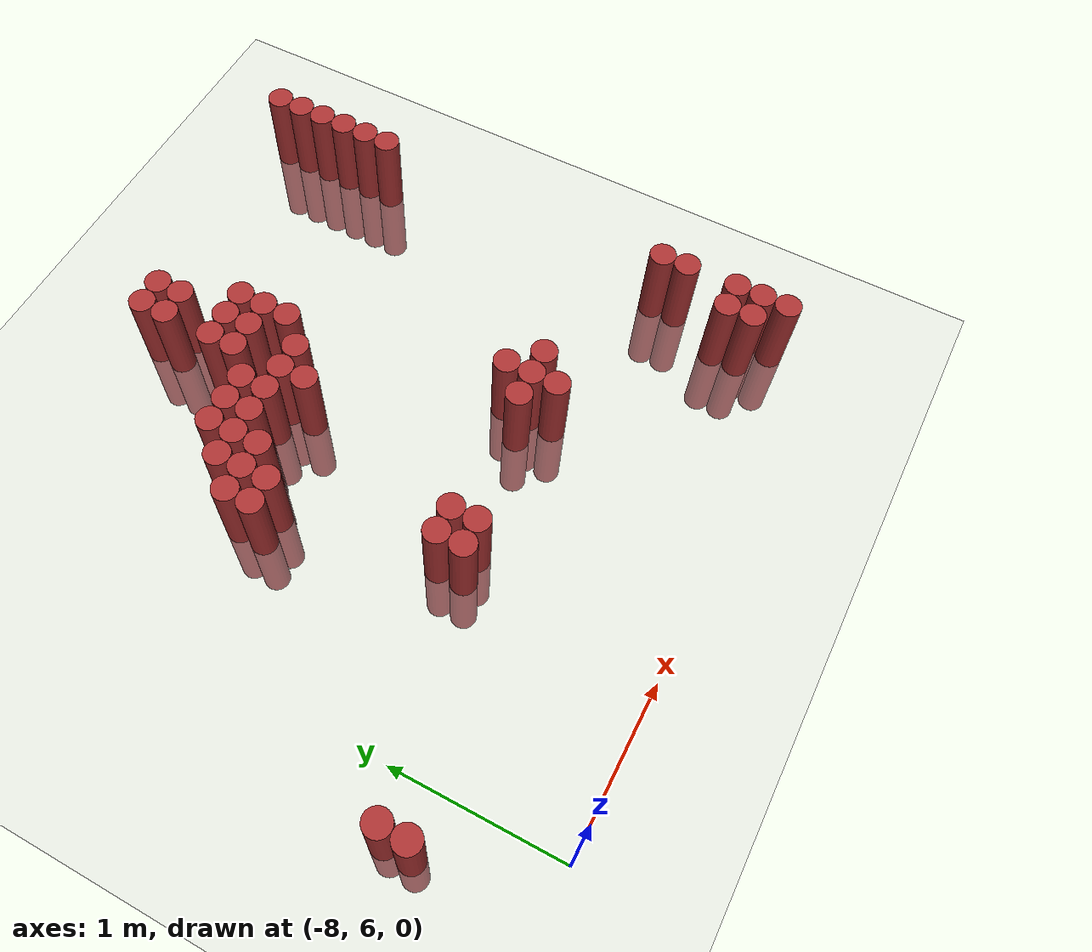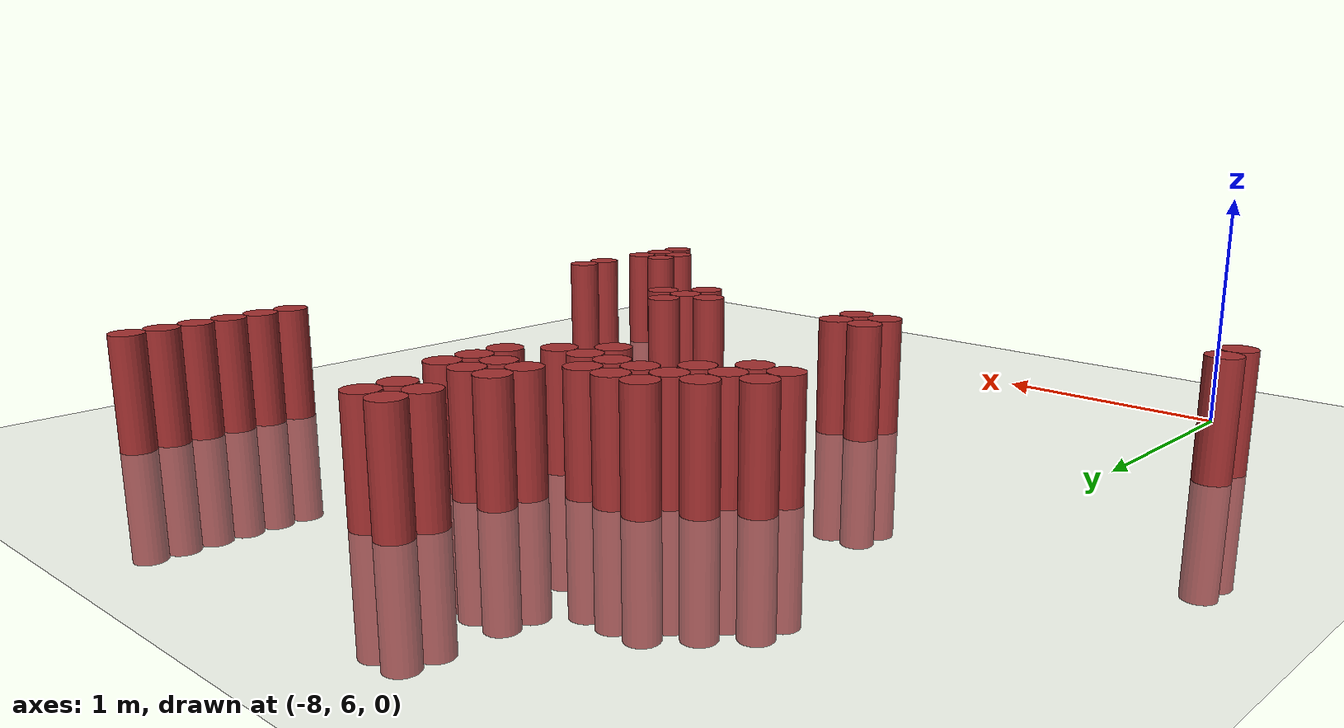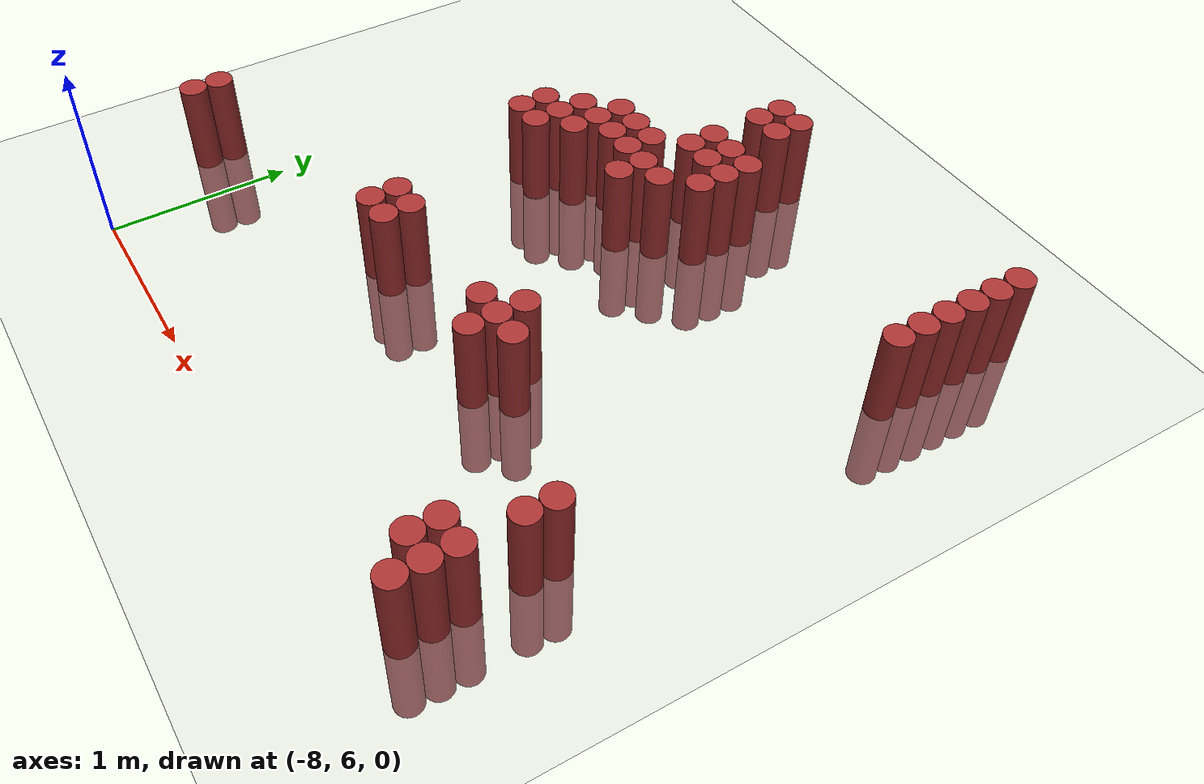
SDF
<sdf version="1.6">
 <world name="default">
  <model name="ground_plane">
   <static>1</static>
   <link name="link">
    <collision name="collision">
     <geometry><plane><normal>0 0 1</normal><size>100 100</size></plane></geometry>
     <surface><friction><ode><mu>100</mu><mu2>50</mu2></ode></friction></surface>
    </collision>
    <visual name="visual">
     <cast_shadows>0</cast_shadows>
     <geometry><plane><normal>0 0 1</normal><size>100 100</size></plane></geometry>
     <material>
      <script><uri>file://media/materials/scripts/gazebo.material</uri><name>Gazebo/Grey</name></script>
     </material>
    </visual>
   </link>
  </model>
  <model name="unit_cylinder_186">
   <static>1</static>
   <pose>-8.325000 6.675000 0.000000 0.000000 0.000000 0.000000</pose>
   <link name="link">
    <inertial>
     <mass>1</mass>
     <inertia><ixx>0.145833</ixx><ixy>0</ixy><ixz>0</ixz><iyy>0.145833</iyy><iyz>0</iyz><izz>0.125</izz></inertia>
    </inertial>
    <collision name="collision">
     <geometry><cylinder><radius>0.075000</radius><length>1</length></cylinder></geometry>
    </collision>
    <visual name="visual">
     <geometry><cylinder><radius>0.075000</radius><length>1</length></cylinder></geometry>
     <material>
      <ambient>0.648000 0.192000 0.192000 1</ambient>
      <diffuse>0.648000 0.192000 0.192000 1</diffuse>
     </material>
     <material>
      <script><name>Gazebo/Grey</name><uri>file://media/materials/scripts/gazebo.material</uri></script>
     </material>
    </visual>
   </link>
  </model>
  <model name="unit_cylinder_187">
   <static>1</static>
   <pose>-8.325000 6.825000 0.000000 0.000000 0.000000 0.000000</pose>
   <link name="link">
    <inertial>
     <mass>1</mass>
     <inertia><ixx>0.145833</ixx><ixy>0</ixy><ixz>0</ixz><iyy>0.145833</iyy><iyz>0</iyz><izz>0.125</izz></inertia>
    </inertial>
    <collision name="collision">
     <geometry><cylinder><radius>0.075000</radius><length>1</length></cylinder></geometry>
    </collision>
    <visual name="visual">
     <geometry><cylinder><radius>0.075000</radius><length>1</length></cylinder></geometry>
     <material>
      <ambient>0.648000 0.192000 0.192000 1</ambient>
      <diffuse>0.648000 0.192000 0.192000 1</diffuse>
     </material>
     <material>
      <script><name>Gazebo/Grey</name><uri>file://media/materials/scripts/gazebo.material</uri></script>
     </material>
    </visual>
   </link>
  </model>
  <model name="unit_cylinder_202">
   <static>1</static>
   <pose>-7.275000 8.175000 0.000000 0.000000 0.000000 0.000000</pose>
   <link name="link">
    <inertial>
     <mass>1</mass>
     <inertia><ixx>0.145833</ixx><ixy>0</ixy><ixz>0</ixz><iyy>0.145833</iyy><iyz>0</iyz><izz>0.125</izz></inertia>
    </inertial>
    <collision name="collision">
     <geometry><cylinder><radius>0.075000</radius><length>1</length></cylinder></geometry>
    </collision>
    <visual name="visual">
     <geometry><cylinder><radius>0.075000</radius><length>1</length></cylinder></geometry>
     <material>
      <ambient>0.648000 0.192000 0.192000 1</ambient>
      <diffuse>0.648000 0.192000 0.192000 1</diffuse>
     </material>
     <material>
      <script><name>Gazebo/Grey</name><uri>file://media/materials/scripts/gazebo.material</uri></script>
     </material>
    </visual>
   </link>
  </model>
  <model name="unit_cylinder_203">
   <static>1</static>
   <pose>-7.275000 8.325000 0.000000 0.000000 0.000000 0.000000</pose>
   <link name="link">
    <inertial>
     <mass>1</mass>
     <inertia><ixx>0.145833</ixx><ixy>0</ixy><ixz>0</ixz><iyy>0.145833</iyy><iyz>0</iyz><izz>0.125</izz></inertia>
    </inertial>
    <collision name="collision">
     <geometry><cylinder><radius>0.075000</radius><length>1</length></cylinder></geometry>
    </collision>
    <visual name="visual">
     <geometry><cylinder><radius>0.075000</radius><length>1</length></cylinder></geometry>
     <material>
      <ambient>0.648000 0.192000 0.192000 1</ambient>
      <diffuse>0.648000 0.192000 0.192000 1</diffuse>
     </material>
     <material>
      <script><name>Gazebo/Grey</name><uri>file://media/materials/scripts/gazebo.material</uri></script>
     </material>
    </visual>
   </link>
  </model>
  <model name="unit_cylinder_206">
   <static>1</static>
   <pose>-7.125000 8.175000 0.000000 0.000000 0.000000 0.000000</pose>
   <link name="link">
    <inertial>
     <mass>1</mass>
     <inertia><ixx>0.145833</ixx><ixy>0</ixy><ixz>0</ixz><iyy>0.145833</iyy><iyz>0</iyz><izz>0.125</izz></inertia>
    </inertial>
    <collision name="collision">
     <geometry><cylinder><radius>0.075000</radius><length>1</length></cylinder></geometry>
    </collision>
    <visual name="visual">
     <geometry><cylinder><radius>0.075000</radius><length>1</length></cylinder></geometry>
     <material>
      <ambient>0.648000 0.192000 0.192000 1</ambient>
      <diffuse>0.648000 0.192000 0.192000 1</diffuse>
     </material>
     <material>
      <script><name>Gazebo/Grey</name><uri>file://media/materials/scripts/gazebo.material</uri></script>
     </material>
    </visual>
   </link>
  </model>
  <model name="unit_cylinder_207">
   <static>1</static>
   <pose>-7.125000 8.325000 0.000000 0.000000 0.000000 0.000000</pose>
   <link name="link">
    <inertial>
     <mass>1</mass>
     <inertia><ixx>0.145833</ixx><ixy>0</ixy><ixz>0</ixz><iyy>0.145833</iyy><iyz>0</iyz><izz>0.125</izz></inertia>
    </inertial>
    <collision name="collision">
     <geometry><cylinder><radius>0.075000</radius><length>1</length></cylinder></geometry>
    </collision>
    <visual name="visual">
     <geometry><cylinder><radius>0.075000</radius><length>1</length></cylinder></geometry>
     <material>
      <ambient>0.648000 0.192000 0.192000 1</ambient>
      <diffuse>0.648000 0.192000 0.192000 1</diffuse>
     </material>
     <material>
      <script><name>Gazebo/Grey</name><uri>file://media/materials/scripts/gazebo.material</uri></script>
     </material>
    </visual>
   </link>
  </model>
  <model name="unit_cylinder_208">
   <static>1</static>
   <pose>-7.125000 8.475000 0.000000 0.000000 0.000000 0.000000</pose>
   <link name="link">
    <inertial>
     <mass>1</mass>
     <inertia><ixx>0.145833</ixx><ixy>0</ixy><ixz>0</ixz><iyy>0.145833</iyy><iyz>0</iyz><izz>0.125</izz></inertia>
    </inertial>
    <collision name="collision">
     <geometry><cylinder><radius>0.075000</radius><length>1</length></cylinder></geometry>
    </collision>
    <visual name="visual">
     <geometry><cylinder><radius>0.075000</radius><length>1</length></cylinder></geometry>
     <material>
      <ambient>0.648000 0.192000 0.192000 1</ambient>
      <diffuse>0.648000 0.192000 0.192000 1</diffuse>
     </material>
     <material>
      <script><name>Gazebo/Grey</name><uri>file://media/materials/scripts/gazebo.material</uri></script>
     </material>
    </visual>
   </link>
  </model>
  <model name="unit_cylinder_211">
   <static>1</static>
   <pose>-6.975000 7.125000 0.000000 0.000000 0.000000 0.000000</pose>
   <link name="link">
    <inertial>
     <mass>1</mass>
     <inertia><ixx>0.145833</ixx><ixy>0</ixy><ixz>0</ixz><iyy>0.145833</iyy><iyz>0</iyz><izz>0.125</izz></inertia>
    </inertial>
    <collision name="collision">
     <geometry><cylinder><radius>0.075000</radius><length>1</length></cylinder></geometry>
    </collision>
    <visual name="visual">
     <geometry><cylinder><radius>0.075000</radius><length>1</length></cylinder></geometry>
     <material>
      <ambient>0.648000 0.192000 0.192000 1</ambient>
      <diffuse>0.648000 0.192000 0.192000 1</diffuse>
     </material>
     <material>
      <script><name>Gazebo/Grey</name><uri>file://media/materials/scripts/gazebo.material</uri></script>
     </material>
    </visual>
   </link>
  </model>
  <model name="unit_cylinder_212">
   <static>1</static>
   <pose>-6.975000 7.275000 0.000000 0.000000 0.000000 0.000000</pose>
   <link name="link">
    <inertial>
     <mass>1</mass>
     <inertia><ixx>0.145833</ixx><ixy>0</ixy><ixz>0</ixz><iyy>0.145833</iyy><iyz>0</iyz><izz>0.125</izz></inertia>
    </inertial>
    <collision name="collision">
     <geometry><cylinder><radius>0.075000</radius><length>1</length></cylinder></geometry>
    </collision>
    <visual name="visual">
     <geometry><cylinder><radius>0.075000</radius><length>1</length></cylinder></geometry>
     <material>
      <ambient>0.648000 0.192000 0.192000 1</ambient>
      <diffuse>0.648000 0.192000 0.192000 1</diffuse>
     </material>
     <material>
      <script><name>Gazebo/Grey</name><uri>file://media/materials/scripts/gazebo.material</uri></script>
     </material>
    </visual>
   </link>
  </model>
  <model name="unit_cylinder_213">
   <static>1</static>
   <pose>-6.975000 8.325000 0.000000 0.000000 0.000000 0.000000</pose>
   <link name="link">
    <inertial>
     <mass>1</mass>
     <inertia><ixx>0.145833</ixx><ixy>0</ixy><ixz>0</ixz><iyy>0.145833</iyy><iyz>0</iyz><izz>0.125</izz></inertia>
    </inertial>
    <collision name="collision">
     <geometry><cylinder><radius>0.075000</radius><length>1</length></cylinder></geometry>
    </collision>
    <visual name="visual">
     <geometry><cylinder><radius>0.075000</radius><length>1</length></cylinder></geometry>
     <material>
      <ambient>0.648000 0.192000 0.192000 1</ambient>
      <diffuse>0.648000 0.192000 0.192000 1</diffuse>
     </material>
     <material>
      <script><name>Gazebo/Grey</name><uri>file://media/materials/scripts/gazebo.material</uri></script>
     </material>
    </visual>
   </link>
  </model>
  <model name="unit_cylinder_214">
   <static>1</static>
   <pose>-6.975000 8.475000 0.000000 0.000000 0.000000 0.000000</pose>
   <link name="link">
    <inertial>
     <mass>1</mass>
     <inertia><ixx>0.145833</ixx><ixy>0</ixy><ixz>0</ixz><iyy>0.145833</iyy><iyz>0</iyz><izz>0.125</izz></inertia>
    </inertial>
    <collision name="collision">
     <geometry><cylinder><radius>0.075000</radius><length>1</length></cylinder></geometry>
    </collision>
    <visual name="visual">
     <geometry><cylinder><radius>0.075000</radius><length>1</length></cylinder></geometry>
     <material>
      <ambient>0.648000 0.192000 0.192000 1</ambient>
      <diffuse>0.648000 0.192000 0.192000 1</diffuse>
     </material>
     <material>
      <script><name>Gazebo/Grey</name><uri>file://media/materials/scripts/gazebo.material</uri></script>
     </material>
    </visual>
   </link>
  </model>
  <model name="unit_cylinder_215">
   <static>1</static>
   <pose>-6.975000 8.625000 0.000000 0.000000 0.000000 0.000000</pose>
   <link name="link">
    <inertial>
     <mass>1</mass>
     <inertia><ixx>0.145833</ixx><ixy>0</ixy><ixz>0</ixz><iyy>0.145833</iyy><iyz>0</iyz><izz>0.125</izz></inertia>
    </inertial>
    <collision name="collision">
     <geometry><cylinder><radius>0.075000</radius><length>1</length></cylinder></geometry>
    </collision>
    <visual name="visual">
     <geometry><cylinder><radius>0.075000</radius><length>1</length></cylinder></geometry>
     <material>
      <ambient>0.648000 0.192000 0.192000 1</ambient>
      <diffuse>0.648000 0.192000 0.192000 1</diffuse>
     </material>
     <material>
      <script><name>Gazebo/Grey</name><uri>file://media/materials/scripts/gazebo.material</uri></script>
     </material>
    </visual>
   </link>
  </model>
  <model name="unit_cylinder_218">
   <static>1</static>
   <pose>-6.825000 7.125000 0.000000 0.000000 0.000000 0.000000</pose>
   <link name="link">
    <inertial>
     <mass>1</mass>
     <inertia><ixx>0.145833</ixx><ixy>0</ixy><ixz>0</ixz><iyy>0.145833</iyy><iyz>0</iyz><izz>0.125</izz></inertia>
    </inertial>
    <collision name="collision">
     <geometry><cylinder><radius>0.075000</radius><length>1</length></cylinder></geometry>
    </collision>
    <visual name="visual">
     <geometry><cylinder><radius>0.075000</radius><length>1</length></cylinder></geometry>
     <material>
      <ambient>0.648000 0.192000 0.192000 1</ambient>
      <diffuse>0.648000 0.192000 0.192000 1</diffuse>
     </material>
     <material>
      <script><name>Gazebo/Grey</name><uri>file://media/materials/scripts/gazebo.material</uri></script>
     </material>
    </visual>
   </link>
  </model>
  <model name="unit_cylinder_219">
   <static>1</static>
   <pose>-6.825000 7.275000 0.000000 0.000000 0.000000 0.000000</pose>
   <link name="link">
    <inertial>
     <mass>1</mass>
     <inertia><ixx>0.145833</ixx><ixy>0</ixy><ixz>0</ixz><iyy>0.145833</iyy><iyz>0</iyz><izz>0.125</izz></inertia>
    </inertial>
    <collision name="collision">
     <geometry><cylinder><radius>0.075000</radius><length>1</length></cylinder></geometry>
    </collision>
    <visual name="visual">
     <geometry><cylinder><radius>0.075000</radius><length>1</length></cylinder></geometry>
     <material>
      <ambient>0.648000 0.192000 0.192000 1</ambient>
      <diffuse>0.648000 0.192000 0.192000 1</diffuse>
     </material>
     <material>
      <script><name>Gazebo/Grey</name><uri>file://media/materials/scripts/gazebo.material</uri></script>
     </material>
    </visual>
   </link>
  </model>
  <model name="unit_cylinder_220">
   <static>1</static>
   <pose>-6.825000 8.475000 0.000000 0.000000 0.000000 0.000000</pose>
   <link name="link">
    <inertial>
     <mass>1</mass>
     <inertia><ixx>0.145833</ixx><ixy>0</ixy><ixz>0</ixz><iyy>0.145833</iyy><iyz>0</iyz><izz>0.125</izz></inertia>
    </inertial>
    <collision name="collision">
     <geometry><cylinder><radius>0.075000</radius><length>1</length></cylinder></geometry>
    </collision>
    <visual name="visual">
     <geometry><cylinder><radius>0.075000</radius><length>1</length></cylinder></geometry>
     <material>
      <ambient>0.648000 0.192000 0.192000 1</ambient>
      <diffuse>0.648000 0.192000 0.192000 1</diffuse>
     </material>
     <material>
      <script><name>Gazebo/Grey</name><uri>file://media/materials/scripts/gazebo.material</uri></script>
     </material>
    </visual>
   </link>
  </model>
  <model name="unit_cylinder_221">
   <static>1</static>
   <pose>-6.825000 8.625000 0.000000 0.000000 0.000000 0.000000</pose>
   <link name="link">
    <inertial>
     <mass>1</mass>
     <inertia><ixx>0.145833</ixx><ixy>0</ixy><ixz>0</ixz><iyy>0.145833</iyy><iyz>0</iyz><izz>0.125</izz></inertia>
    </inertial>
    <collision name="collision">
     <geometry><cylinder><radius>0.075000</radius><length>1</length></cylinder></geometry>
    </collision>
    <visual name="visual">
     <geometry><cylinder><radius>0.075000</radius><length>1</length></cylinder></geometry>
     <material>
      <ambient>0.648000 0.192000 0.192000 1</ambient>
      <diffuse>0.648000 0.192000 0.192000 1</diffuse>
     </material>
     <material>
      <script><name>Gazebo/Grey</name><uri>file://media/materials/scripts/gazebo.material</uri></script>
     </material>
    </visual>
   </link>
  </model>
  <model name="unit_cylinder_224">
   <static>1</static>
   <pose>-6.675000 8.475000 0.000000 0.000000 0.000000 0.000000</pose>
   <link name="link">
    <inertial>
     <mass>1</mass>
     <inertia><ixx>0.145833</ixx><ixy>0</ixy><ixz>0</ixz><iyy>0.145833</iyy><iyz>0</iyz><izz>0.125</izz></inertia>
    </inertial>
    <collision name="collision">
     <geometry><cylinder><radius>0.075000</radius><length>1</length></cylinder></geometry>
    </collision>
    <visual name="visual">
     <geometry><cylinder><radius>0.075000</radius><length>1</length></cylinder></geometry>
     <material>
      <ambient>0.648000 0.192000 0.192000 1</ambient>
      <diffuse>0.648000 0.192000 0.192000 1</diffuse>
     </material>
     <material>
      <script><name>Gazebo/Grey</name><uri>file://media/materials/scripts/gazebo.material</uri></script>
     </material>
    </visual>
   </link>
  </model>
  <model name="unit_cylinder_225">
   <static>1</static>
   <pose>-6.675000 8.625000 0.000000 0.000000 0.000000 0.000000</pose>
   <link name="link">
    <inertial>
     <mass>1</mass>
     <inertia><ixx>0.145833</ixx><ixy>0</ixy><ixz>0</ixz><iyy>0.145833</iyy><iyz>0</iyz><izz>0.125</izz></inertia>
    </inertial>
    <collision name="collision">
     <geometry><cylinder><radius>0.075000</radius><length>1</length></cylinder></geometry>
    </collision>
    <visual name="visual">
     <geometry><cylinder><radius>0.075000</radius><length>1</length></cylinder></geometry>
     <material>
      <ambient>0.648000 0.192000 0.192000 1</ambient>
      <diffuse>0.648000 0.192000 0.192000 1</diffuse>
     </material>
     <material>
      <script><name>Gazebo/Grey</name><uri>file://media/materials/scripts/gazebo.material</uri></script>
     </material>
    </visual>
   </link>
  </model>
  <model name="unit_cylinder_228">
   <static>1</static>
   <pose>-6.525000 8.325000 0.000000 0.000000 0.000000 0.000000</pose>
   <link name="link">
    <inertial>
     <mass>1</mass>
     <inertia><ixx>0.145833</ixx><ixy>0</ixy><ixz>0</ixz><iyy>0.145833</iyy><iyz>0</iyz><izz>0.125</izz></inertia>
    </inertial>
    <collision name="collision">
     <geometry><cylinder><radius>0.075000</radius><length>1</length></cylinder></geometry>
    </collision>
    <visual name="visual">
     <geometry><cylinder><radius>0.075000</radius><length>1</length></cylinder></geometry>
     <material>
      <ambient>0.648000 0.192000 0.192000 1</ambient>
      <diffuse>0.648000 0.192000 0.192000 1</diffuse>
     </material>
     <material>
      <script><name>Gazebo/Grey</name><uri>file://media/materials/scripts/gazebo.material</uri></script>
     </material>
    </visual>
   </link>
  </model>
  <model name="unit_cylinder_229">
   <static>1</static>
   <pose>-6.525000 8.475000 0.000000 0.000000 0.000000 0.000000</pose>
   <link name="link">
    <inertial>
     <mass>1</mass>
     <inertia><ixx>0.145833</ixx><ixy>0</ixy><ixz>0</ixz><iyy>0.145833</iyy><iyz>0</iyz><izz>0.125</izz></inertia>
    </inertial>
    <collision name="collision">
     <geometry><cylinder><radius>0.075000</radius><length>1</length></cylinder></geometry>
    </collision>
    <visual name="visual">
     <geometry><cylinder><radius>0.075000</radius><length>1</length></cylinder></geometry>
     <material>
      <ambient>0.648000 0.192000 0.192000 1</ambient>
      <diffuse>0.648000 0.192000 0.192000 1</diffuse>
     </material>
     <material>
      <script><name>Gazebo/Grey</name><uri>file://media/materials/scripts/gazebo.material</uri></script>
     </material>
    </visual>
   </link>
  </model>
  <model name="unit_cylinder_230">
   <static>1</static>
   <pose>-6.525000 8.775000 0.000000 0.000000 0.000000 0.000000</pose>
   <link name="link">
    <inertial>
     <mass>1</mass>
     <inertia><ixx>0.145833</ixx><ixy>0</ixy><ixz>0</ixz><iyy>0.145833</iyy><iyz>0</iyz><izz>0.125</izz></inertia>
    </inertial>
    <collision name="collision">
     <geometry><cylinder><radius>0.075000</radius><length>1</length></cylinder></geometry>
    </collision>
    <visual name="visual">
     <geometry><cylinder><radius>0.075000</radius><length>1</length></cylinder></geometry>
     <material>
      <ambient>0.648000 0.192000 0.192000 1</ambient>
      <diffuse>0.648000 0.192000 0.192000 1</diffuse>
     </material>
     <material>
      <script><name>Gazebo/Grey</name><uri>file://media/materials/scripts/gazebo.material</uri></script>
     </material>
    </visual>
   </link>
  </model>
  <model name="unit_cylinder_231">
   <static>1</static>
   <pose>-6.525000 8.925000 0.000000 0.000000 0.000000 0.000000</pose>
   <link name="link">
    <inertial>
     <mass>1</mass>
     <inertia><ixx>0.145833</ixx><ixy>0</ixy><ixz>0</ixz><iyy>0.145833</iyy><iyz>0</iyz><izz>0.125</izz></inertia>
    </inertial>
    <collision name="collision">
     <geometry><cylinder><radius>0.075000</radius><length>1</length></cylinder></geometry>
    </collision>
    <visual name="visual">
     <geometry><cylinder><radius>0.075000</radius><length>1</length></cylinder></geometry>
     <material>
      <ambient>0.648000 0.192000 0.192000 1</ambient>
      <diffuse>0.648000 0.192000 0.192000 1</diffuse>
     </material>
     <material>
      <script><name>Gazebo/Grey</name><uri>file://media/materials/scripts/gazebo.material</uri></script>
     </material>
    </visual>
   </link>
  </model>
  <model name="unit_cylinder_232">
   <static>1</static>
   <pose>-6.525000 9.225000 0.000000 0.000000 0.000000 0.000000</pose>
   <link name="link">
    <inertial>
     <mass>1</mass>
     <inertia><ixx>0.145833</ixx><ixy>0</ixy><ixz>0</ixz><iyy>0.145833</iyy><iyz>0</iyz><izz>0.125</izz></inertia>
    </inertial>
    <collision name="collision">
     <geometry><cylinder><radius>0.075000</radius><length>1</length></cylinder></geometry>
    </collision>
    <visual name="visual">
     <geometry><cylinder><radius>0.075000</radius><length>1</length></cylinder></geometry>
     <material>
      <ambient>0.648000 0.192000 0.192000 1</ambient>
      <diffuse>0.648000 0.192000 0.192000 1</diffuse>
     </material>
     <material>
      <script><name>Gazebo/Grey</name><uri>file://media/materials/scripts/gazebo.material</uri></script>
     </material>
    </visual>
   </link>
  </model>
  <model name="unit_cylinder_233">
   <static>1</static>
   <pose>-6.525000 9.375000 0.000000 0.000000 0.000000 0.000000</pose>
   <link name="link">
    <inertial>
     <mass>1</mass>
     <inertia><ixx>0.145833</ixx><ixy>0</ixy><ixz>0</ixz><iyy>0.145833</iyy><iyz>0</iyz><izz>0.125</izz></inertia>
    </inertial>
    <collision name="collision">
     <geometry><cylinder><radius>0.075000</radius><length>1</length></cylinder></geometry>
    </collision>
    <visual name="visual">
     <geometry><cylinder><radius>0.075000</radius><length>1</length></cylinder></geometry>
     <material>
      <ambient>0.648000 0.192000 0.192000 1</ambient>
      <diffuse>0.648000 0.192000 0.192000 1</diffuse>
     </material>
     <material>
      <script><name>Gazebo/Grey</name><uri>file://media/materials/scripts/gazebo.material</uri></script>
     </material>
    </visual>
   </link>
  </model>
  <model name="unit_cylinder_239">
   <static>1</static>
   <pose>-6.375000 8.475000 0.000000 0.000000 0.000000 0.000000</pose>
   <link name="link">
    <inertial>
     <mass>1</mass>
     <inertia><ixx>0.145833</ixx><ixy>0</ixy><ixz>0</ixz><iyy>0.145833</iyy><iyz>0</iyz><izz>0.125</izz></inertia>
    </inertial>
    <collision name="collision">
     <geometry><cylinder><radius>0.075000</radius><length>1</length></cylinder></geometry>
    </collision>
    <visual name="visual">
     <geometry><cylinder><radius>0.075000</radius><length>1</length></cylinder></geometry>
     <material>
      <ambient>0.648000 0.192000 0.192000 1</ambient>
      <diffuse>0.648000 0.192000 0.192000 1</diffuse>
     </material>
     <material>
      <script><name>Gazebo/Grey</name><uri>file://media/materials/scripts/gazebo.material</uri></script>
     </material>
    </visual>
   </link>
  </model>
  <model name="unit_cylinder_240">
   <static>1</static>
   <pose>-6.375000 8.775000 0.000000 0.000000 0.000000 0.000000</pose>
   <link name="link">
    <inertial>
     <mass>1</mass>
     <inertia><ixx>0.145833</ixx><ixy>0</ixy><ixz>0</ixz><iyy>0.145833</iyy><iyz>0</iyz><izz>0.125</izz></inertia>
    </inertial>
    <collision name="collision">
     <geometry><cylinder><radius>0.075000</radius><length>1</length></cylinder></geometry>
    </collision>
    <visual name="visual">
     <geometry><cylinder><radius>0.075000</radius><length>1</length></cylinder></geometry>
     <material>
      <ambient>0.648000 0.192000 0.192000 1</ambient>
      <diffuse>0.648000 0.192000 0.192000 1</diffuse>
     </material>
     <material>
      <script><name>Gazebo/Grey</name><uri>file://media/materials/scripts/gazebo.material</uri></script>
     </material>
    </visual>
   </link>
  </model>
  <model name="unit_cylinder_241">
   <static>1</static>
   <pose>-6.375000 8.925000 0.000000 0.000000 0.000000 0.000000</pose>
   <link name="link">
    <inertial>
     <mass>1</mass>
     <inertia><ixx>0.145833</ixx><ixy>0</ixy><ixz>0</ixz><iyy>0.145833</iyy><iyz>0</iyz><izz>0.125</izz></inertia>
    </inertial>
    <collision name="collision">
     <geometry><cylinder><radius>0.075000</radius><length>1</length></cylinder></geometry>
    </collision>
    <visual name="visual">
     <geometry><cylinder><radius>0.075000</radius><length>1</length></cylinder></geometry>
     <material>
      <ambient>0.648000 0.192000 0.192000 1</ambient>
      <diffuse>0.648000 0.192000 0.192000 1</diffuse>
     </material>
     <material>
      <script><name>Gazebo/Grey</name><uri>file://media/materials/scripts/gazebo.material</uri></script>
     </material>
    </visual>
   </link>
  </model>
  <model name="unit_cylinder_242">
   <static>1</static>
   <pose>-6.375000 9.225000 0.000000 0.000000 0.000000 0.000000</pose>
   <link name="link">
    <inertial>
     <mass>1</mass>
     <inertia><ixx>0.145833</ixx><ixy>0</ixy><ixz>0</ixz><iyy>0.145833</iyy><iyz>0</iyz><izz>0.125</izz></inertia>
    </inertial>
    <collision name="collision">
     <geometry><cylinder><radius>0.075000</radius><length>1</length></cylinder></geometry>
    </collision>
    <visual name="visual">
     <geometry><cylinder><radius>0.075000</radius><length>1</length></cylinder></geometry>
     <material>
      <ambient>0.648000 0.192000 0.192000 1</ambient>
      <diffuse>0.648000 0.192000 0.192000 1</diffuse>
     </material>
     <material>
      <script><name>Gazebo/Grey</name><uri>file://media/materials/scripts/gazebo.material</uri></script>
     </material>
    </visual>
   </link>
  </model>
  <model name="unit_cylinder_243">
   <static>1</static>
   <pose>-6.375000 9.375000 0.000000 0.000000 0.000000 0.000000</pose>
   <link name="link">
    <inertial>
     <mass>1</mass>
     <inertia><ixx>0.145833</ixx><ixy>0</ixy><ixz>0</ixz><iyy>0.145833</iyy><iyz>0</iyz><izz>0.125</izz></inertia>
    </inertial>
    <collision name="collision">
     <geometry><cylinder><radius>0.075000</radius><length>1</length></cylinder></geometry>
    </collision>
    <visual name="visual">
     <geometry><cylinder><radius>0.075000</radius><length>1</length></cylinder></geometry>
     <material>
      <ambient>0.648000 0.192000 0.192000 1</ambient>
      <diffuse>0.648000 0.192000 0.192000 1</diffuse>
     </material>
     <material>
      <script><name>Gazebo/Grey</name><uri>file://media/materials/scripts/gazebo.material</uri></script>
     </material>
    </visual>
   </link>
  </model>
  <model name="unit_cylinder_244">
   <static>1</static>
   <pose>-6.225000 8.625000 0.000000 0.000000 0.000000 0.000000</pose>
   <link name="link">
    <inertial>
     <mass>1</mass>
     <inertia><ixx>0.145833</ixx><ixy>0</ixy><ixz>0</ixz><iyy>0.145833</iyy><iyz>0</iyz><izz>0.125</izz></inertia>
    </inertial>
    <collision name="collision">
     <geometry><cylinder><radius>0.075000</radius><length>1</length></cylinder></geometry>
    </collision>
    <visual name="visual">
     <geometry><cylinder><radius>0.075000</radius><length>1</length></cylinder></geometry>
     <material>
      <ambient>0.648000 0.192000 0.192000 1</ambient>
      <diffuse>0.648000 0.192000 0.192000 1</diffuse>
     </material>
     <material>
      <script><name>Gazebo/Grey</name><uri>file://media/materials/scripts/gazebo.material</uri></script>
     </material>
    </visual>
   </link>
  </model>
  <model name="unit_cylinder_245">
   <static>1</static>
   <pose>-6.225000 8.775000 0.000000 0.000000 0.000000 0.000000</pose>
   <link name="link">
    <inertial>
     <mass>1</mass>
     <inertia><ixx>0.145833</ixx><ixy>0</ixy><ixz>0</ixz><iyy>0.145833</iyy><iyz>0</iyz><izz>0.125</izz></inertia>
    </inertial>
    <collision name="collision">
     <geometry><cylinder><radius>0.075000</radius><length>1</length></cylinder></geometry>
    </collision>
    <visual name="visual">
     <geometry><cylinder><radius>0.075000</radius><length>1</length></cylinder></geometry>
     <material>
      <ambient>0.648000 0.192000 0.192000 1</ambient>
      <diffuse>0.648000 0.192000 0.192000 1</diffuse>
     </material>
     <material>
      <script><name>Gazebo/Grey</name><uri>file://media/materials/scripts/gazebo.material</uri></script>
     </material>
    </visual>
   </link>
  </model>
  <model name="unit_cylinder_246">
   <static>1</static>
   <pose>-6.225000 8.925000 0.000000 0.000000 0.000000 0.000000</pose>
   <link name="link">
    <inertial>
     <mass>1</mass>
     <inertia><ixx>0.145833</ixx><ixy>0</ixy><ixz>0</ixz><iyy>0.145833</iyy><iyz>0</iyz><izz>0.125</izz></inertia>
    </inertial>
    <collision name="collision">
     <geometry><cylinder><radius>0.075000</radius><length>1</length></cylinder></geometry>
    </collision>
    <visual name="visual">
     <geometry><cylinder><radius>0.075000</radius><length>1</length></cylinder></geometry>
     <material>
      <ambient>0.648000 0.192000 0.192000 1</ambient>
      <diffuse>0.648000 0.192000 0.192000 1</diffuse>
     </material>
     <material>
      <script><name>Gazebo/Grey</name><uri>file://media/materials/scripts/gazebo.material</uri></script>
     </material>
    </visual>
   </link>
  </model>
  <model name="unit_cylinder_247">
   <static>1</static>
   <pose>-6.075000 7.275000 0.000000 0.000000 0.000000 0.000000</pose>
   <link name="link">
    <inertial>
     <mass>1</mass>
     <inertia><ixx>0.145833</ixx><ixy>0</ixy><ixz>0</ixz><iyy>0.145833</iyy><iyz>0</iyz><izz>0.125</izz></inertia>
    </inertial>
    <collision name="collision">
     <geometry><cylinder><radius>0.075000</radius><length>1</length></cylinder></geometry>
    </collision>
    <visual name="visual">
     <geometry><cylinder><radius>0.075000</radius><length>1</length></cylinder></geometry>
     <material>
      <ambient>0.648000 0.192000 0.192000 1</ambient>
      <diffuse>0.648000 0.192000 0.192000 1</diffuse>
     </material>
     <material>
      <script><name>Gazebo/Grey</name><uri>file://media/materials/scripts/gazebo.material</uri></script>
     </material>
    </visual>
   </link>
  </model>
  <model name="unit_cylinder_248">
   <static>1</static>
   <pose>-5.925000 7.125000 0.000000 0.000000 0.000000 0.000000</pose>
   <link name="link">
    <inertial>
     <mass>1</mass>
     <inertia><ixx>0.145833</ixx><ixy>0</ixy><ixz>0</ixz><iyy>0.145833</iyy><iyz>0</iyz><izz>0.125</izz></inertia>
    </inertial>
    <collision name="collision">
     <geometry><cylinder><radius>0.075000</radius><length>1</length></cylinder></geometry>
    </collision>
    <visual name="visual">
     <geometry><cylinder><radius>0.075000</radius><length>1</length></cylinder></geometry>
     <material>
      <ambient>0.648000 0.192000 0.192000 1</ambient>
      <diffuse>0.648000 0.192000 0.192000 1</diffuse>
     </material>
     <material>
      <script><name>Gazebo/Grey</name><uri>file://media/materials/scripts/gazebo.material</uri></script>
     </material>
    </visual>
   </link>
  </model>
  <model name="unit_cylinder_249">
   <static>1</static>
   <pose>-5.925000 7.275000 0.000000 0.000000 0.000000 0.000000</pose>
   <link name="link">
    <inertial>
     <mass>1</mass>
     <inertia><ixx>0.145833</ixx><ixy>0</ixy><ixz>0</ixz><iyy>0.145833</iyy><iyz>0</iyz><izz>0.125</izz></inertia>
    </inertial>
    <collision name="collision">
     <geometry><cylinder><radius>0.075000</radius><length>1</length></cylinder></geometry>
    </collision>
    <visual name="visual">
     <geometry><cylinder><radius>0.075000</radius><length>1</length></cylinder></geometry>
     <material>
      <ambient>0.648000 0.192000 0.192000 1</ambient>
      <diffuse>0.648000 0.192000 0.192000 1</diffuse>
     </material>
     <material>
      <script><name>Gazebo/Grey</name><uri>file://media/materials/scripts/gazebo.material</uri></script>
     </material>
    </visual>
   </link>
  </model>
  <model name="unit_cylinder_250">
   <static>1</static>
   <pose>-5.925000 7.425000 0.000000 0.000000 0.000000 0.000000</pose>
   <link name="link">
    <inertial>
     <mass>1</mass>
     <inertia><ixx>0.145833</ixx><ixy>0</ixy><ixz>0</ixz><iyy>0.145833</iyy><iyz>0</iyz><izz>0.125</izz></inertia>
    </inertial>
    <collision name="collision">
     <geometry><cylinder><radius>0.075000</radius><length>1</length></cylinder></geometry>
    </collision>
    <visual name="visual">
     <geometry><cylinder><radius>0.075000</radius><length>1</length></cylinder></geometry>
     <material>
      <ambient>0.648000 0.192000 0.192000 1</ambient>
      <diffuse>0.648000 0.192000 0.192000 1</diffuse>
     </material>
     <material>
      <script><name>Gazebo/Grey</name><uri>file://media/materials/scripts/gazebo.material</uri></script>
     </material>
    </visual>
   </link>
  </model>
  <model name="unit_cylinder_251">
   <static>1</static>
   <pose>-5.775000 7.275000 0.000000 0.000000 0.000000 0.000000</pose>
   <link name="link">
    <inertial>
     <mass>1</mass>
     <inertia><ixx>0.145833</ixx><ixy>0</ixy><ixz>0</ixz><iyy>0.145833</iyy><iyz>0</iyz><izz>0.125</izz></inertia>
    </inertial>
    <collision name="collision">
     <geometry><cylinder><radius>0.075000</radius><length>1</length></cylinder></geometry>
    </collision>
    <visual name="visual">
     <geometry><cylinder><radius>0.075000</radius><length>1</length></cylinder></geometry>
     <material>
      <ambient>0.648000 0.192000 0.192000 1</ambient>
      <diffuse>0.648000 0.192000 0.192000 1</diffuse>
     </material>
     <material>
      <script><name>Gazebo/Grey</name><uri>file://media/materials/scripts/gazebo.material</uri></script>
     </material>
    </visual>
   </link>
  </model>
  <model name="unit_cylinder_254">
   <static>1</static>
   <pose>-5.025000 6.375000 0.000000 0.000000 0.000000 0.000000</pose>
   <link name="link">
    <inertial>
     <mass>1</mass>
     <inertia><ixx>0.145833</ixx><ixy>0</ixy><ixz>0</ixz><iyy>0.145833</iyy><iyz>0</iyz><izz>0.125</izz></inertia>
    </inertial>
    <collision name="collision">
     <geometry><cylinder><radius>0.075000</radius><length>1</length></cylinder></geometry>
    </collision>
    <visual name="visual">
     <geometry><cylinder><radius>0.075000</radius><length>1</length></cylinder></geometry>
     <material>
      <ambient>0.648000 0.192000 0.192000 1</ambient>
      <diffuse>0.648000 0.192000 0.192000 1</diffuse>
     </material>
     <material>
      <script><name>Gazebo/Grey</name><uri>file://media/materials/scripts/gazebo.material</uri></script>
     </material>
    </visual>
   </link>
  </model>
  <model name="unit_cylinder_255">
   <static>1</static>
   <pose>-5.025000 6.525000 0.000000 0.000000 0.000000 0.000000</pose>
   <link name="link">
    <inertial>
     <mass>1</mass>
     <inertia><ixx>0.145833</ixx><ixy>0</ixy><ixz>0</ixz><iyy>0.145833</iyy><iyz>0</iyz><izz>0.125</izz></inertia>
    </inertial>
    <collision name="collision">
     <geometry><cylinder><radius>0.075000</radius><length>1</length></cylinder></geometry>
    </collision>
    <visual name="visual">
     <geometry><cylinder><radius>0.075000</radius><length>1</length></cylinder></geometry>
     <material>
      <ambient>0.648000 0.192000 0.192000 1</ambient>
      <diffuse>0.648000 0.192000 0.192000 1</diffuse>
     </material>
     <material>
      <script><name>Gazebo/Grey</name><uri>file://media/materials/scripts/gazebo.material</uri></script>
     </material>
    </visual>
   </link>
  </model>
  <model name="unit_cylinder_259">
   <static>1</static>
   <pose>-4.875000 6.225000 0.000000 0.000000 0.000000 0.000000</pose>
   <link name="link">
    <inertial>
     <mass>1</mass>
     <inertia><ixx>0.145833</ixx><ixy>0</ixy><ixz>0</ixz><iyy>0.145833</iyy><iyz>0</iyz><izz>0.125</izz></inertia>
    </inertial>
    <collision name="collision">
     <geometry><cylinder><radius>0.075000</radius><length>1</length></cylinder></geometry>
    </collision>
    <visual name="visual">
     <geometry><cylinder><radius>0.075000</radius><length>1</length></cylinder></geometry>
     <material>
      <ambient>0.648000 0.192000 0.192000 1</ambient>
      <diffuse>0.648000 0.192000 0.192000 1</diffuse>
     </material>
     <material>
      <script><name>Gazebo/Grey</name><uri>file://media/materials/scripts/gazebo.material</uri></script>
     </material>
    </visual>
   </link>
  </model>
  <model name="unit_cylinder_260">
   <static>1</static>
   <pose>-4.875000 6.375000 0.000000 0.000000 0.000000 0.000000</pose>
   <link name="link">
    <inertial>
     <mass>1</mass>
     <inertia><ixx>0.145833</ixx><ixy>0</ixy><ixz>0</ixz><iyy>0.145833</iyy><iyz>0</iyz><izz>0.125</izz></inertia>
    </inertial>
    <collision name="collision">
     <geometry><cylinder><radius>0.075000</radius><length>1</length></cylinder></geometry>
    </collision>
    <visual name="visual">
     <geometry><cylinder><radius>0.075000</radius><length>1</length></cylinder></geometry>
     <material>
      <ambient>0.648000 0.192000 0.192000 1</ambient>
      <diffuse>0.648000 0.192000 0.192000 1</diffuse>
     </material>
     <material>
      <script><name>Gazebo/Grey</name><uri>file://media/materials/scripts/gazebo.material</uri></script>
     </material>
    </visual>
   </link>
  </model>
  <model name="unit_cylinder_261">
   <static>1</static>
   <pose>-4.875000 6.525000 0.000000 0.000000 0.000000 0.000000</pose>
   <link name="link">
    <inertial>
     <mass>1</mass>
     <inertia><ixx>0.145833</ixx><ixy>0</ixy><ixz>0</ixz><iyy>0.145833</iyy><iyz>0</iyz><izz>0.125</izz></inertia>
    </inertial>
    <collision name="collision">
     <geometry><cylinder><radius>0.075000</radius><length>1</length></cylinder></geometry>
    </collision>
    <visual name="visual">
     <geometry><cylinder><radius>0.075000</radius><length>1</length></cylinder></geometry>
     <material>
      <ambient>0.648000 0.192000 0.192000 1</ambient>
      <diffuse>0.648000 0.192000 0.192000 1</diffuse>
     </material>
     <material>
      <script><name>Gazebo/Grey</name><uri>file://media/materials/scripts/gazebo.material</uri></script>
     </material>
    </visual>
   </link>
  </model>
  <model name="unit_cylinder_262">
   <static>1</static>
   <pose>-4.875000 6.825000 0.000000 0.000000 0.000000 0.000000</pose>
   <link name="link">
    <inertial>
     <mass>1</mass>
     <inertia><ixx>0.145833</ixx><ixy>0</ixy><ixz>0</ixz><iyy>0.145833</iyy><iyz>0</iyz><izz>0.125</izz></inertia>
    </inertial>
    <collision name="collision">
     <geometry><cylinder><radius>0.075000</radius><length>1</length></cylinder></geometry>
    </collision>
    <visual name="visual">
     <geometry><cylinder><radius>0.075000</radius><length>1</length></cylinder></geometry>
     <material>
      <ambient>0.648000 0.192000 0.192000 1</ambient>
      <diffuse>0.648000 0.192000 0.192000 1</diffuse>
     </material>
     <material>
      <script><name>Gazebo/Grey</name><uri>file://media/materials/scripts/gazebo.material</uri></script>
     </material>
    </visual>
   </link>
  </model>
  <model name="unit_cylinder_263">
   <static>1</static>
   <pose>-4.875000 6.975000 0.000000 0.000000 0.000000 0.000000</pose>
   <link name="link">
    <inertial>
     <mass>1</mass>
     <inertia><ixx>0.145833</ixx><ixy>0</ixy><ixz>0</ixz><iyy>0.145833</iyy><iyz>0</iyz><izz>0.125</izz></inertia>
    </inertial>
    <collision name="collision">
     <geometry><cylinder><radius>0.075000</radius><length>1</length></cylinder></geometry>
    </collision>
    <visual name="visual">
     <geometry><cylinder><radius>0.075000</radius><length>1</length></cylinder></geometry>
     <material>
      <ambient>0.648000 0.192000 0.192000 1</ambient>
      <diffuse>0.648000 0.192000 0.192000 1</diffuse>
     </material>
     <material>
      <script><name>Gazebo/Grey</name><uri>file://media/materials/scripts/gazebo.material</uri></script>
     </material>
    </visual>
   </link>
  </model>
  <model name="unit_cylinder_264">
   <static>1</static>
   <pose>-4.875000 8.775000 0.000000 0.000000 0.000000 0.000000</pose>
   <link name="link">
    <inertial>
     <mass>1</mass>
     <inertia><ixx>0.145833</ixx><ixy>0</ixy><ixz>0</ixz><iyy>0.145833</iyy><iyz>0</iyz><izz>0.125</izz></inertia>
    </inertial>
    <collision name="collision">
     <geometry><cylinder><radius>0.075000</radius><length>1</length></cylinder></geometry>
    </collision>
    <visual name="visual">
     <geometry><cylinder><radius>0.075000</radius><length>1</length></cylinder></geometry>
     <material>
      <ambient>0.648000 0.192000 0.192000 1</ambient>
      <diffuse>0.648000 0.192000 0.192000 1</diffuse>
     </material>
     <material>
      <script><name>Gazebo/Grey</name><uri>file://media/materials/scripts/gazebo.material</uri></script>
     </material>
    </visual>
   </link>
  </model>
  <model name="unit_cylinder_265">
   <static>1</static>
   <pose>-4.875000 8.925000 0.000000 0.000000 0.000000 0.000000</pose>
   <link name="link">
    <inertial>
     <mass>1</mass>
     <inertia><ixx>0.145833</ixx><ixy>0</ixy><ixz>0</ixz><iyy>0.145833</iyy><iyz>0</iyz><izz>0.125</izz></inertia>
    </inertial>
    <collision name="collision">
     <geometry><cylinder><radius>0.075000</radius><length>1</length></cylinder></geometry>
    </collision>
    <visual name="visual">
     <geometry><cylinder><radius>0.075000</radius><length>1</length></cylinder></geometry>
     <material>
      <ambient>0.648000 0.192000 0.192000 1</ambient>
      <diffuse>0.648000 0.192000 0.192000 1</diffuse>
     </material>
     <material>
      <script><name>Gazebo/Grey</name><uri>file://media/materials/scripts/gazebo.material</uri></script>
     </material>
    </visual>
   </link>
  </model>
  <model name="unit_cylinder_266">
   <static>1</static>
   <pose>-4.875000 9.075000 0.000000 0.000000 0.000000 0.000000</pose>
   <link name="link">
    <inertial>
     <mass>1</mass>
     <inertia><ixx>0.145833</ixx><ixy>0</ixy><ixz>0</ixz><iyy>0.145833</iyy><iyz>0</iyz><izz>0.125</izz></inertia>
    </inertial>
    <collision name="collision">
     <geometry><cylinder><radius>0.075000</radius><length>1</length></cylinder></geometry>
    </collision>
    <visual name="visual">
     <geometry><cylinder><radius>0.075000</radius><length>1</length></cylinder></geometry>
     <material>
      <ambient>0.648000 0.192000 0.192000 1</ambient>
      <diffuse>0.648000 0.192000 0.192000 1</diffuse>
     </material>
     <material>
      <script><name>Gazebo/Grey</name><uri>file://media/materials/scripts/gazebo.material</uri></script>
     </material>
    </visual>
   </link>
  </model>
  <model name="unit_cylinder_267">
   <static>1</static>
   <pose>-4.875000 9.225000 0.000000 0.000000 0.000000 0.000000</pose>
   <link name="link">
    <inertial>
     <mass>1</mass>
     <inertia><ixx>0.145833</ixx><ixy>0</ixy><ixz>0</ixz><iyy>0.145833</iyy><iyz>0</iyz><izz>0.125</izz></inertia>
    </inertial>
    <collision name="collision">
     <geometry><cylinder><radius>0.075000</radius><length>1</length></cylinder></geometry>
    </collision>
    <visual name="visual">
     <geometry><cylinder><radius>0.075000</radius><length>1</length></cylinder></geometry>
     <material>
      <ambient>0.648000 0.192000 0.192000 1</ambient>
      <diffuse>0.648000 0.192000 0.192000 1</diffuse>
     </material>
     <material>
      <script><name>Gazebo/Grey</name><uri>file://media/materials/scripts/gazebo.material</uri></script>
     </material>
    </visual>
   </link>
  </model>
  <model name="unit_cylinder_268">
   <static>1</static>
   <pose>-4.875000 9.375000 0.000000 0.000000 0.000000 0.000000</pose>
   <link name="link">
    <inertial>
     <mass>1</mass>
     <inertia><ixx>0.145833</ixx><ixy>0</ixy><ixz>0</ixz><iyy>0.145833</iyy><iyz>0</iyz><izz>0.125</izz></inertia>
    </inertial>
    <collision name="collision">
     <geometry><cylinder><radius>0.075000</radius><length>1</length></cylinder></geometry>
    </collision>
    <visual name="visual">
     <geometry><cylinder><radius>0.075000</radius><length>1</length></cylinder></geometry>
     <material>
      <ambient>0.648000 0.192000 0.192000 1</ambient>
      <diffuse>0.648000 0.192000 0.192000 1</diffuse>
     </material>
     <material>
      <script><name>Gazebo/Grey</name><uri>file://media/materials/scripts/gazebo.material</uri></script>
     </material>
    </visual>
   </link>
  </model>
  <model name="unit_cylinder_269">
   <static>1</static>
   <pose>-4.875000 9.525000 0.000000 0.000000 0.000000 0.000000</pose>
   <link name="link">
    <inertial>
     <mass>1</mass>
     <inertia><ixx>0.145833</ixx><ixy>0</ixy><ixz>0</ixz><iyy>0.145833</iyy><iyz>0</iyz><izz>0.125</izz></inertia>
    </inertial>
    <collision name="collision">
     <geometry><cylinder><radius>0.075000</radius><length>1</length></cylinder></geometry>
    </collision>
    <visual name="visual">
     <geometry><cylinder><radius>0.075000</radius><length>1</length></cylinder></geometry>
     <material>
      <ambient>0.648000 0.192000 0.192000 1</ambient>
      <diffuse>0.648000 0.192000 0.192000 1</diffuse>
     </material>
     <material>
      <script><name>Gazebo/Grey</name><uri>file://media/materials/scripts/gazebo.material</uri></script>
     </material>
    </visual>
   </link>
  </model>
 </world>
</sdf>
